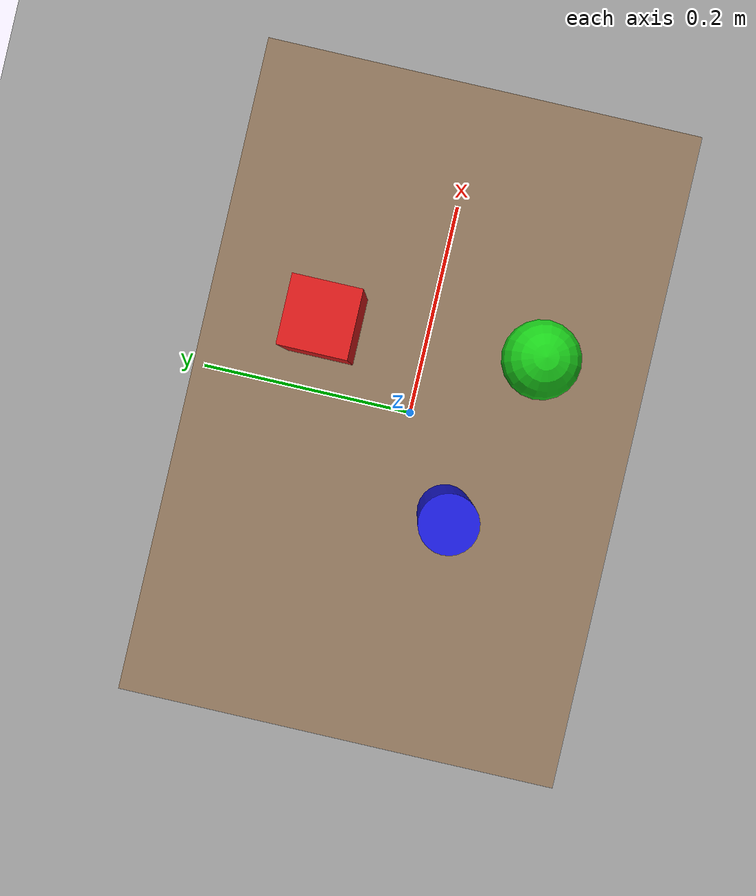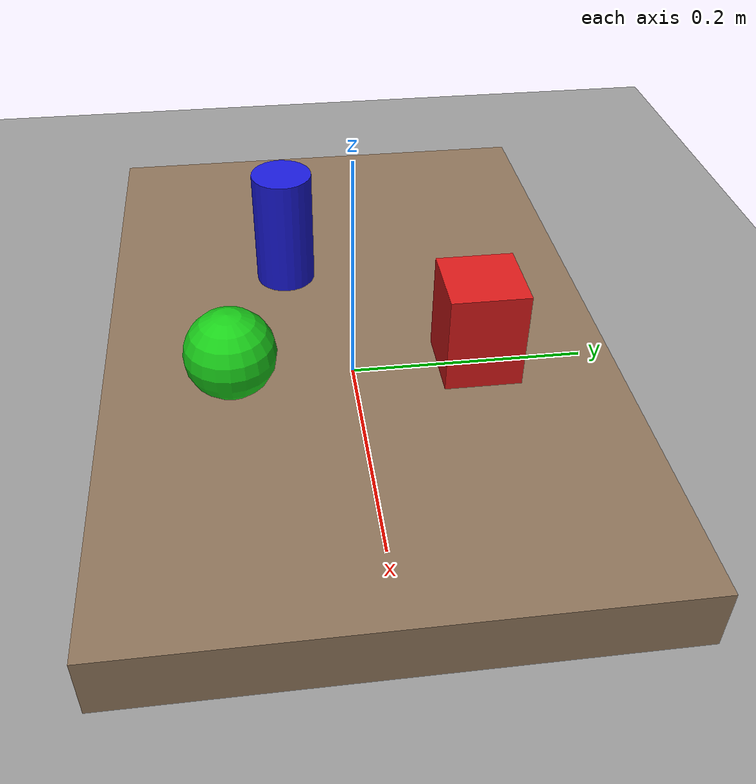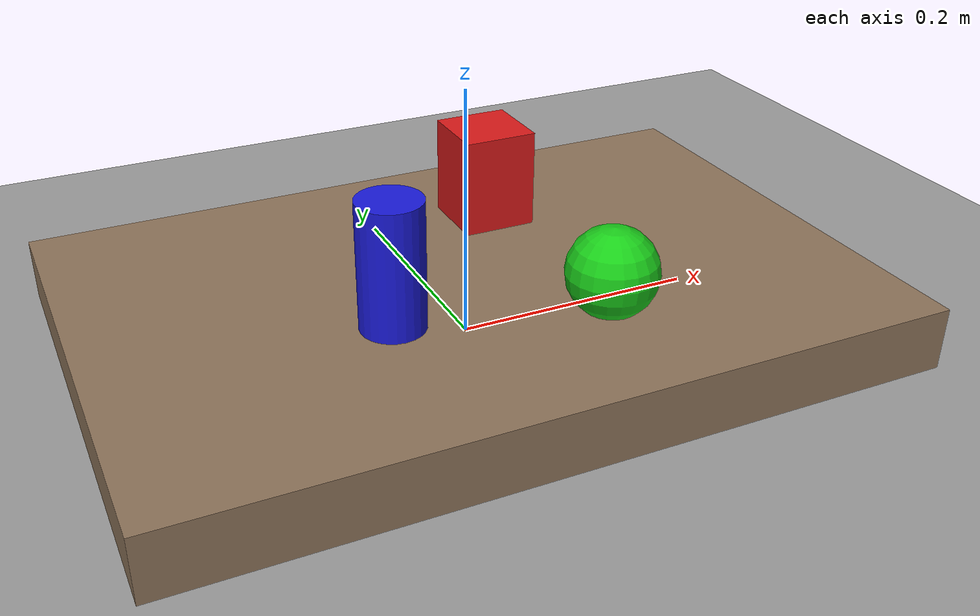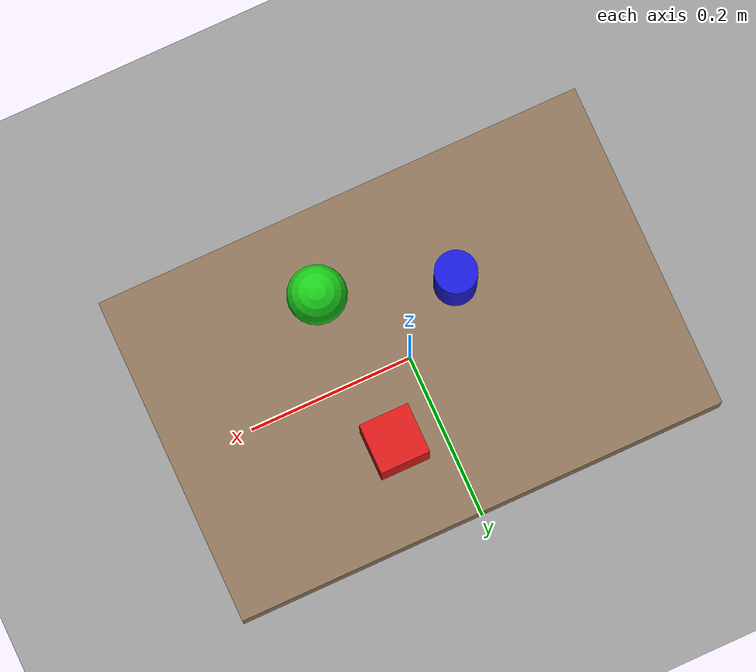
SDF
<?xml version="1.0"?>
<sdf version="1.9">
  <world name="vision_world">

    <!-- Physics: DART at 1 kHz (same as arctos_world) -->
    <physics name="1ms" type="dart">
      <max_step_size>0.001</max_step_size>
      <real_time_factor>1.0</real_time_factor>
    </physics>

    <!-- Required system plugins -->
    <plugin filename="gz-sim-physics-system"
            name="gz::sim::systems::Physics"/>
    <plugin filename="gz-sim-user-commands-system"
            name="gz::sim::systems::UserCommands"/>
    <plugin filename="gz-sim-scene-broadcaster-system"
            name="gz::sim::systems::SceneBroadcaster"/>
    <!-- ogre (1.x) for WSL2 software rendering — same as arctos_world -->
    <plugin filename="gz-sim-sensors-system"
            name="gz::sim::systems::Sensors">
      <render_engine>ogre</render_engine>
    </plugin>
    <plugin filename="gz-sim-contact-system"
            name="gz::sim::systems::Contact"/>

    <!-- Lighting -->
    <light name="sun" type="directional">
      <cast_shadows>true</cast_shadows>
      <pose>0 0 10 0 0 0</pose>
      <diffuse>0.9 0.9 0.9 1</diffuse>
      <specular>0.3 0.3 0.3 1</specular>
      <attenuation>
        <range>1000</range>
        <constant>0.9</constant>
        <linear>0.01</linear>
        <quadratic>0.001</quadratic>
      </attenuation>
      <direction>-0.5 0.1 -0.9</direction>
    </light>

    <!-- Second fill light from the opposite side for better object colour -->
    <light name="fill" type="directional">
      <cast_shadows>false</cast_shadows>
      <pose>0 0 5 0 0 0</pose>
      <diffuse>0.4 0.4 0.4 1</diffuse>
      <specular>0.0 0.0 0.0 1</specular>
      <direction>0.5 -0.1 -0.5</direction>
    </light>

    <!-- Ground plane                                                      -->
    <model name="ground_plane">
      <static>true</static>
      <link name="link">
        <collision name="collision">
          <geometry>
            <plane>
              <normal>0 0 1</normal>
              <size>20 20</size>
            </plane>
          </geometry>
        </collision>
        <visual name="visual">
          <geometry>
            <plane>
              <normal>0 0 1</normal>
              <size>20 20</size>
            </plane>
          </geometry>
          <material>
            <ambient>0.6 0.6 0.6 1</ambient>
            <diffuse>0.6 0.6 0.6 1</diffuse>
            <specular>0.1 0.1 0.1 1</specular>
          </material>
        </visual>
      </link>
    </model>

    <!-- Table — 0.6 × 0.4 × 0.05 m, top surface at z = 0.05 m          -->
    <model name="table">
      <static>true</static>
      <pose>0 0 0.025 0 0 0</pose>
      <link name="link">
        <collision name="collision">
          <geometry>
            <box><size>0.6 0.4 0.05</size></box>
          </geometry>
        </collision>
        <visual name="visual">
          <geometry>
            <box><size>0.6 0.4 0.05</size></box>
          </geometry>
          <material>
            <ambient>0.55 0.45 0.35 1</ambient>
            <diffuse>0.55 0.45 0.35 1</diffuse>
            <specular>0.1 0.1 0.1 1</specular>
          </material>
        </visual>
      </link>
    </model>

    <!-- Sample object 1 — RED BOX                                        -->
    <!-- 0.06 × 0.06 × 0.08 m, centre at (0.06, 0.09, 0.09)             -->
    <!-- Represents a pick target in the workspace                        -->
    <model name="red_box">
      <static>false</static>
      <pose>0.06 0.09 0.09 0 0 0</pose>
      <link name="link">
        <inertial>
          <mass>0.1</mass>
          <inertia>
            <ixx>0.000053</ixx><iyy>0.000053</iyy><izz>0.000060</izz>
            <ixy>0</ixy><ixz>0</ixz><iyz>0</iyz>
          </inertia>
        </inertial>
        <collision name="collision">
          <geometry>
            <box><size>0.06 0.06 0.08</size></box>
          </geometry>
        </collision>
        <visual name="visual">
          <geometry>
            <box><size>0.06 0.06 0.08</size></box>
          </geometry>
          <material>
            <ambient>0.85 0.1 0.1 1</ambient>
            <diffuse>0.85 0.1 0.1 1</diffuse>
            <specular>0.3 0.1 0.1 1</specular>
          </material>
        </visual>
      </link>
    </model>

    <!-- Sample object 2 — BLUE CYLINDER                                  -->
    <!-- radius=0.025 m, height=0.10 m, centre at (-0.08, -0.05, 0.10)  -->
    <model name="blue_cylinder">
      <static>false</static>
      <pose>-0.08 -0.05 0.10 0 0 0</pose>
      <link name="link">
        <inertial>
          <mass>0.08</mass>
          <inertia>
            <ixx>0.000079</ixx><iyy>0.000079</iyy><izz>0.000025</izz>
            <ixy>0</ixy><ixz>0</ixz><iyz>0</iyz>
          </inertia>
        </inertial>
        <collision name="collision">
          <geometry>
            <cylinder><radius>0.025</radius><length>0.10</length></cylinder>
          </geometry>
        </collision>
        <visual name="visual">
          <geometry>
            <cylinder><radius>0.025</radius><length>0.10</length></cylinder>
          </geometry>
          <material>
            <ambient>0.1 0.1 0.85 1</ambient>
            <diffuse>0.1 0.1 0.85 1</diffuse>
            <specular>0.1 0.1 0.3 1</specular>
          </material>
        </visual>
      </link>
    </model>

    <!-- Sample object 3 — GREEN SPHERE                                   -->
    <!-- radius=0.035 m, centre at (0.07, -0.10, 0.085)                  -->
    <model name="green_sphere">
      <static>false</static>
      <pose>0.07 -0.10 0.085 0 0 0</pose>
      <link name="link">
        <inertial>
          <mass>0.06</mass>
          <inertia>
            <ixx>0.000029</ixx><iyy>0.000029</iyy><izz>0.000029</izz>
            <ixy>0</ixy><ixz>0</ixz><iyz>0</iyz>
          </inertia>
        </inertial>
        <collision name="collision">
          <geometry>
            <sphere><radius>0.035</radius></sphere>
          </geometry>
        </collision>
        <visual name="visual">
          <geometry>
            <sphere><radius>0.035</radius></sphere>
          </geometry>
          <material>
            <ambient>0.1 0.8 0.1 1</ambient>
            <diffuse>0.1 0.8 0.1 1</diffuse>
            <specular>0.1 0.3 0.1 1</specular>
          </material>
        </visual>
      </link>
    </model>

  </world>
</sdf>
